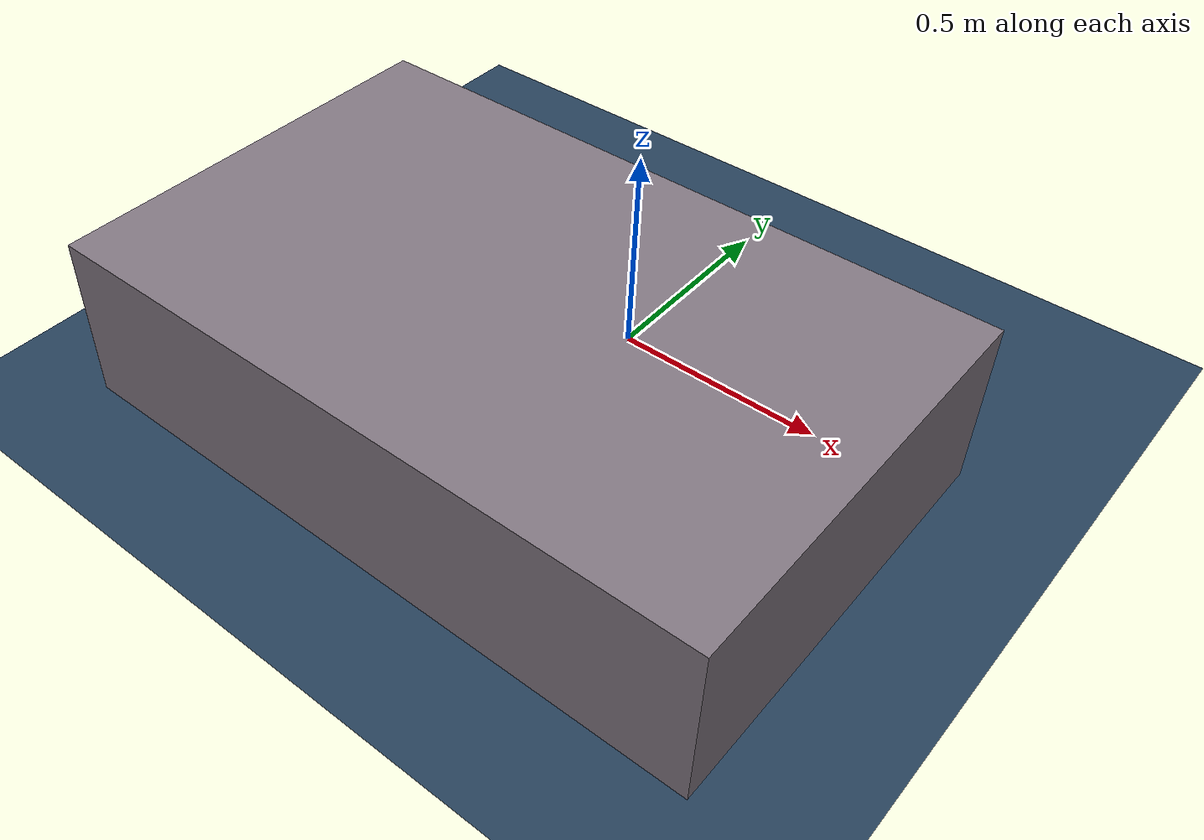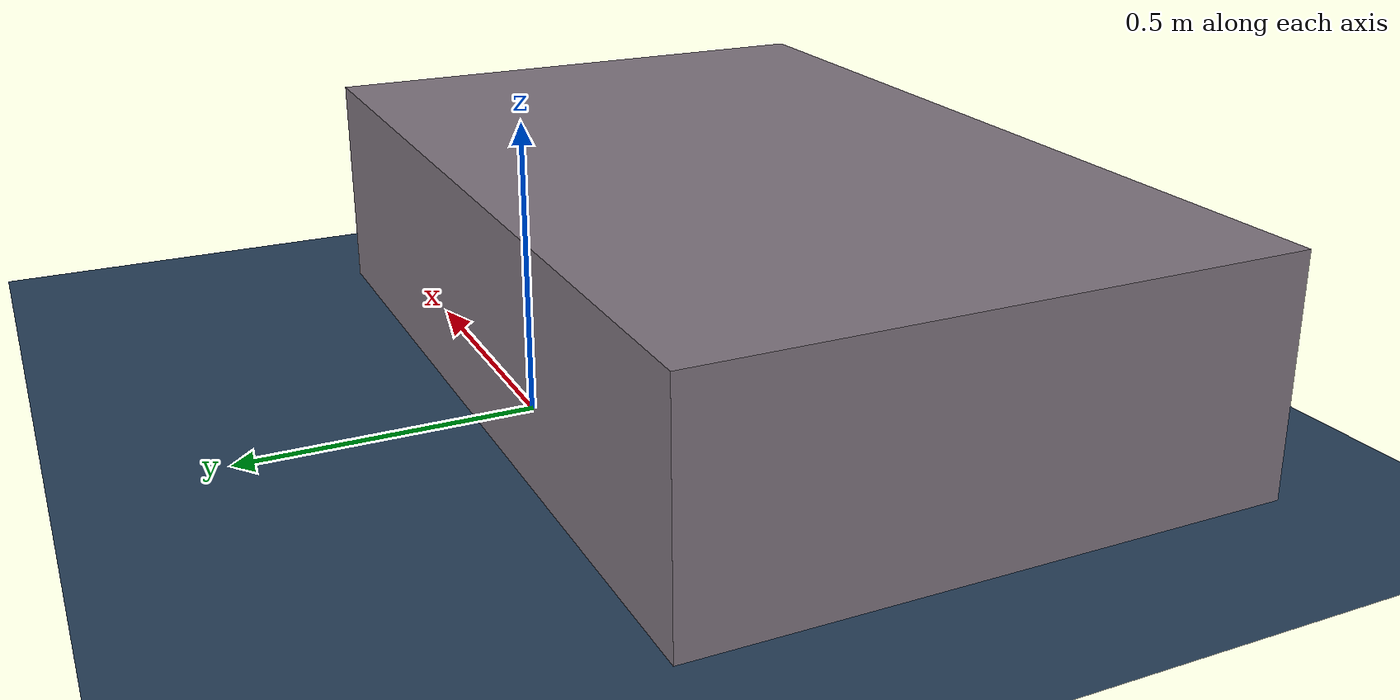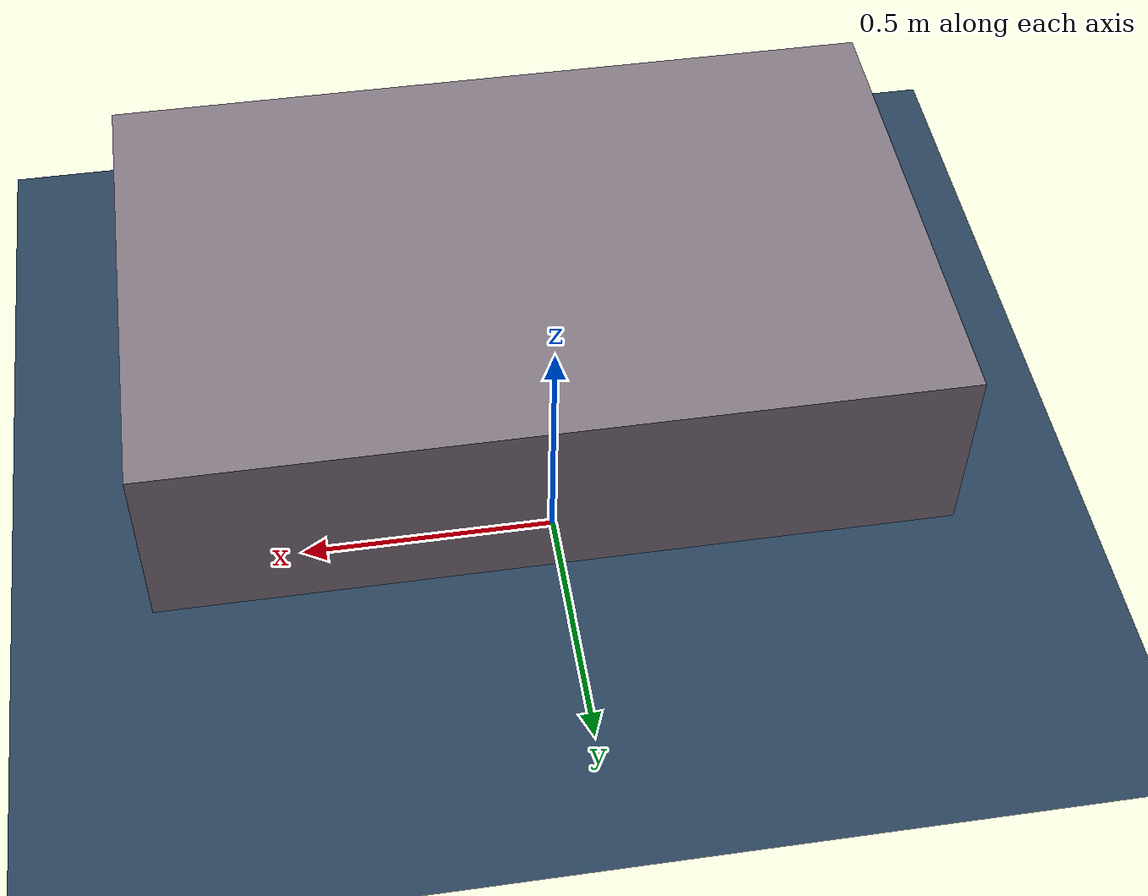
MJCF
<mujoco>
  <asset>
    <texture name="grid" type="2d" builtin="checker" rgb1=".1 .2 .3"
    rgb2=".2 .3 .4" width="300" height="300" mark="edge" markrgb=".2 .3 .4"/>
    <material name="grid" texture="grid" texrepeat="2 2" texuniform="true"
    reflectance=".2"/>
  </asset>

  <visual>
    <headlight diffuse="0.6 0.6 0.6" ambient="0.6 0.6 0.6" specular="0 0 0"/>
    <rgba haze="0.15 0.25 0.35 1"/>
    <global azimuth="150" elevation="-50"/>
  </visual>

  <worldbody>
    <geom name="ground" type="plane" pos="0 0 0" size="0 0 .1" material="grid" solimp=".99 .99 .01" solref=".001 1" friction="0.4 0.005 0.0001"/>
    <body name="table" pos="0 0 0">
        <geom name="table_geom" type="box" size = "0.8 0.5 0.2" pos="0 -0.4 0.2" rgba="0.5 0.46 0.5 1"/>
        <site name="robot_site" pos="0 0 0.4" size="0.001" rgba="1 0 0 1"/>
        <site name="object_start_site" pos="0 -0.6 0.5" size=".01" rgba="1 1 1 0"/>
    </body>
  </worldbody>
</mujoco>
